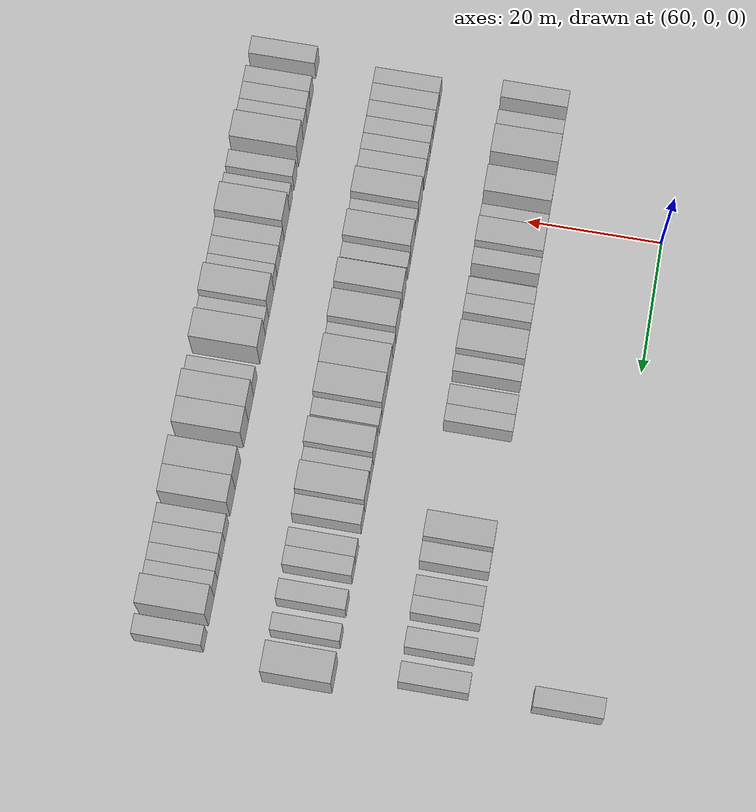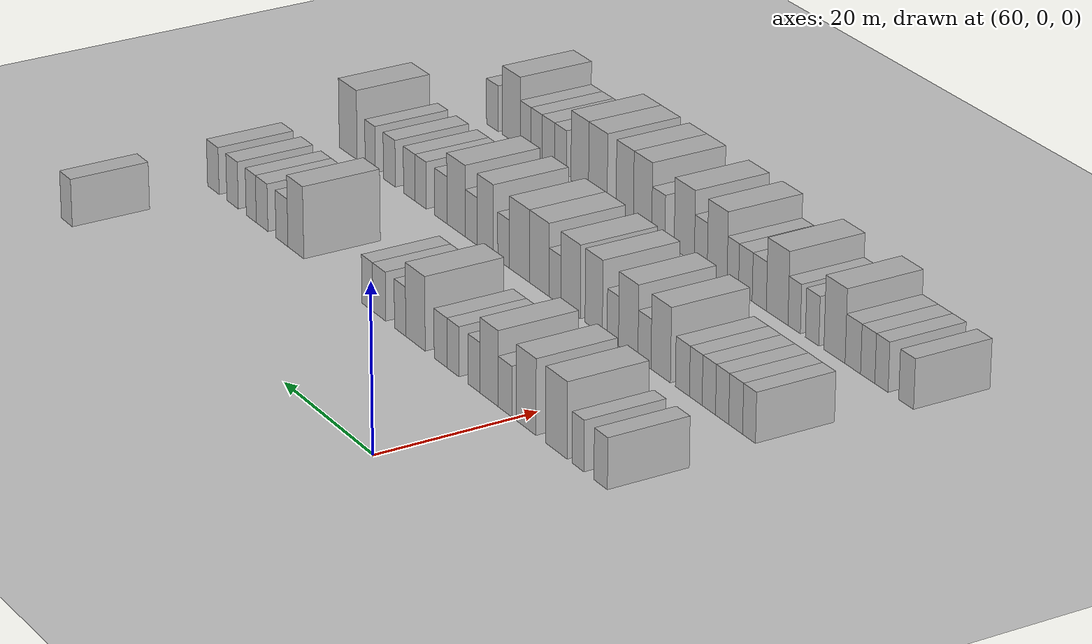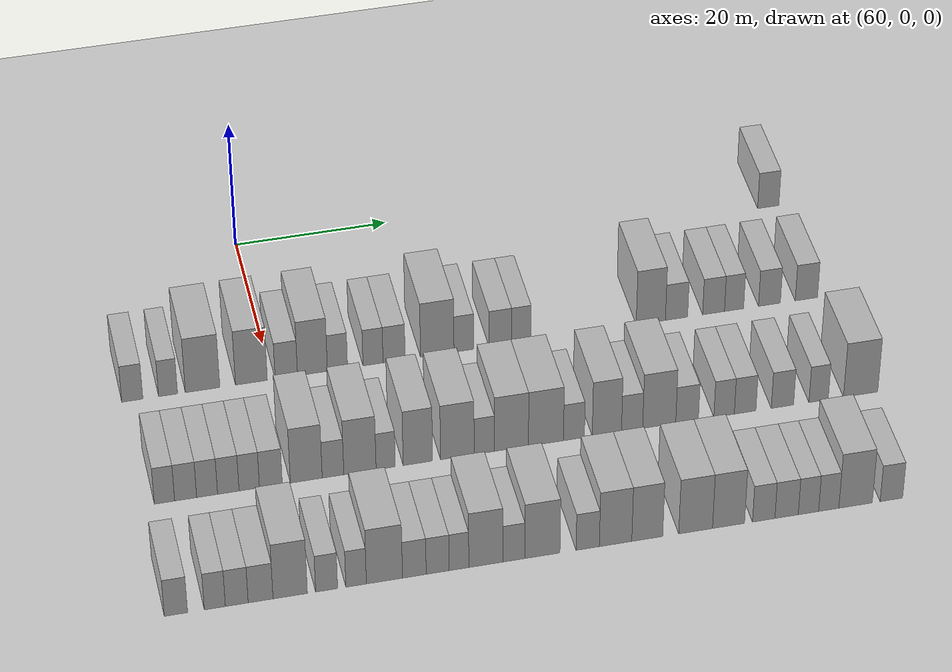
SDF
<sdf version="1.6">
 <world name="default">
  <include>
   <name>ground_plane_2</name>
   <uri>model://HANNAS_ground_plane</uri>
   <pose>100 0 0  0 0 0</pose>
  </include>
  <model name="building_455">
   <static>1</static>
   <pose>63.0000 70.4403 0 0.000000 0.000000 0.000000</pose>
   <link name="link">
    <pose>0 0 3.00 0 0 0</pose>
    <collision name="collision"><geometry><box><size>10.0000 2.9325 6.0000</size></box></geometry></collision>
    <visual name="visual">
     <cast_shadows>0</cast_shadows>
     <geometry><box><size>10.0000 2.9325 6.0000</size></box></geometry>
     <material>
      <script>
       <uri>model://HANNAS_wall/materials/scripts</uri>
       <uri>model://HANNAS_wall/materials/textures</uri>
       <name>vrc/HANNAS_wall</name>
      </script>
     </material>
    </visual>
   </link>
  </model>
  <model name="building_607">
   <static>1</static>
   <pose>82.0000 -17.8307 0 0.000000 0.000000 0.000000</pose>
   <link name="link">
    <pose>0 0 3.00 0 0 0</pose>
    <collision name="collision"><geometry><box><size>10.0000 2.6769 6.0000</size></box></geometry></collision>
    <visual name="visual">
     <cast_shadows>0</cast_shadows>
     <geometry><box><size>10.0000 2.6769 6.0000</size></box></geometry>
     <material>
      <script>
       <uri>model://HANNAS_wall/materials/scripts</uri>
       <uri>model://HANNAS_wall/materials/textures</uri>
       <name>vrc/HANNAS_wall</name>
      </script>
     </material>
    </visual>
   </link>
  </model>
  <model name="building_608">
   <static>1</static>
   <pose>82.0000 -13.2914 0 0.000000 0.000000 0.000000</pose>
   <link name="link">
    <pose>0 0 3.00 0 0 0</pose>
    <collision name="collision"><geometry><box><size>10.0000 2.4017 6.0000</size></box></geometry></collision>
    <visual name="visual">
     <cast_shadows>0</cast_shadows>
     <geometry><box><size>10.0000 2.4017 6.0000</size></box></geometry>
     <material>
      <script>
       <uri>model://HANNAS_wall/materials/scripts</uri>
       <uri>model://HANNAS_wall/materials/textures</uri>
       <name>vrc/HANNAS_wall</name>
      </script>
     </material>
    </visual>
   </link>
  </model>
  <model name="building_609">
   <static>1</static>
   <pose>82.0000 -8.8937 0 0.000000 0.000000 0.000000</pose>
   <link name="link">
    <pose>0 0 4.50 0 0 0</pose>
    <collision name="collision"><geometry><box><size>10.0000 4.3938 9.0000</size></box></geometry></collision>
    <visual name="visual">
     <cast_shadows>0</cast_shadows>
     <geometry><box><size>10.0000 4.3938 9.0000</size></box></geometry>
     <material>
      <script>
       <uri>model://HANNAS_wall/materials/scripts</uri>
       <uri>model://HANNAS_wall/materials/textures</uri>
       <name>vrc/HANNAS_wall</name>
      </script>
     </material>
    </visual>
   </link>
  </model>
  <model name="building_610">
   <static>1</static>
   <pose>82.0000 -2.6568 0 0.000000 0.000000 0.000000</pose>
   <link name="link">
    <pose>0 0 4.50 0 0 0</pose>
    <collision name="collision"><geometry><box><size>10.0000 4.0799 9.0000</size></box></geometry></collision>
    <visual name="visual">
     <cast_shadows>0</cast_shadows>
     <geometry><box><size>10.0000 4.0799 9.0000</size></box></geometry>
     <material>
      <script>
       <uri>model://HANNAS_wall/materials/scripts</uri>
       <uri>model://HANNAS_wall/materials/textures</uri>
       <name>vrc/HANNAS_wall</name>
      </script>
     </material>
    </visual>
   </link>
  </model>
  <model name="building_611">
   <static>1</static>
   <pose>82.0000 1.8225 0 0.000000 0.000000 0.000000</pose>
   <link name="link">
    <pose>0 0 3.00 0 0 0</pose>
    <collision name="collision"><geometry><box><size>10.0000 2.8788 6.0000</size></box></geometry></collision>
    <visual name="visual">
     <cast_shadows>0</cast_shadows>
     <geometry><box><size>10.0000 2.8788 6.0000</size></box></geometry>
     <material>
      <script>
       <uri>model://HANNAS_wall/materials/scripts</uri>
       <uri>model://HANNAS_wall/materials/textures</uri>
       <name>vrc/HANNAS_wall</name>
      </script>
     </material>
    </visual>
   </link>
  </model>
  <model name="building_612">
   <static>1</static>
   <pose>82.0000 5.1880 0 0.000000 0.000000 0.000000</pose>
   <link name="link">
    <pose>0 0 4.50 0 0 0</pose>
    <collision name="collision"><geometry><box><size>10.0000 3.8521 9.0000</size></box></geometry></collision>
    <visual name="visual">
     <cast_shadows>0</cast_shadows>
     <geometry><box><size>10.0000 3.8521 9.0000</size></box></geometry>
     <material>
      <script>
       <uri>model://HANNAS_wall/materials/scripts</uri>
       <uri>model://HANNAS_wall/materials/textures</uri>
       <name>vrc/HANNAS_wall</name>
      </script>
     </material>
    </visual>
   </link>
  </model>
  <model name="building_613">
   <static>1</static>
   <pose>82.0000 8.4117 0 0.000000 0.000000 0.000000</pose>
   <link name="link">
    <pose>0 0 3.00 0 0 0</pose>
    <collision name="collision"><geometry><box><size>10.0000 2.5952 6.0000</size></box></geometry></collision>
    <visual name="visual">
     <cast_shadows>0</cast_shadows>
     <geometry><box><size>10.0000 2.5952 6.0000</size></box></geometry>
     <material>
      <script>
       <uri>model://HANNAS_wall/materials/scripts</uri>
       <uri>model://HANNAS_wall/materials/textures</uri>
       <name>vrc/HANNAS_wall</name>
      </script>
     </material>
    </visual>
   </link>
  </model>
  <model name="building_614">
   <static>1</static>
   <pose>82.0000 13.0053 0 0.000000 0.000000 0.000000</pose>
   <link name="link">
    <pose>0 0 3.00 0 0 0</pose>
    <collision name="collision"><geometry><box><size>10.0000 2.5921 6.0000</size></box></geometry></collision>
    <visual name="visual">
     <cast_shadows>0</cast_shadows>
     <geometry><box><size>10.0000 2.5921 6.0000</size></box></geometry>
     <material>
      <script>
       <uri>model://HANNAS_wall/materials/scripts</uri>
       <uri>model://HANNAS_wall/materials/textures</uri>
       <name>vrc/HANNAS_wall</name>
      </script>
     </material>
    </visual>
   </link>
  </model>
  <model name="building_615">
   <static>1</static>
   <pose>82.0000 15.7340 0 0.000000 0.000000 0.000000</pose>
   <link name="link">
    <pose>0 0 3.00 0 0 0</pose>
    <collision name="collision"><geometry><box><size>10.0000 2.8653 6.0000</size></box></geometry></collision>
    <visual name="visual">
     <cast_shadows>0</cast_shadows>
     <geometry><box><size>10.0000 2.8653 6.0000</size></box></geometry>
     <material>
      <script>
       <uri>model://HANNAS_wall/materials/scripts</uri>
       <uri>model://HANNAS_wall/materials/textures</uri>
       <name>vrc/HANNAS_wall</name>
      </script>
     </material>
    </visual>
   </link>
  </model>
  <model name="building_616">
   <static>1</static>
   <pose>82.0000 21.3483 0 0.000000 0.000000 0.000000</pose>
   <link name="link">
    <pose>0 0 4.50 0 0 0</pose>
    <collision name="collision"><geometry><box><size>10.0000 4.3634 9.0000</size></box></geometry></collision>
    <visual name="visual">
     <cast_shadows>0</cast_shadows>
     <geometry><box><size>10.0000 4.3634 9.0000</size></box></geometry>
     <material>
      <script>
       <uri>model://HANNAS_wall/materials/scripts</uri>
       <uri>model://HANNAS_wall/materials/textures</uri>
       <name>vrc/HANNAS_wall</name>
      </script>
     </material>
    </visual>
   </link>
  </model>
  <model name="building_617">
   <static>1</static>
   <pose>82.0000 24.8137 0 0.000000 0.000000 0.000000</pose>
   <link name="link">
    <pose>0 0 3.00 0 0 0</pose>
    <collision name="collision"><geometry><box><size>10.0000 2.5674 6.0000</size></box></geometry></collision>
    <visual name="visual">
     <cast_shadows>0</cast_shadows>
     <geometry><box><size>10.0000 2.5674 6.0000</size></box></geometry>
     <material>
      <script>
       <uri>model://HANNAS_wall/materials/scripts</uri>
       <uri>model://HANNAS_wall/materials/textures</uri>
       <name>vrc/HANNAS_wall</name>
      </script>
     </material>
    </visual>
   </link>
  </model>
  <model name="building_618">
   <static>1</static>
   <pose>82.0000 29.5744 0 0.000000 0.000000 0.000000</pose>
   <link name="link">
    <pose>0 0 3.00 0 0 0</pose>
    <collision name="collision"><geometry><box><size>10.0000 2.9540 6.0000</size></box></geometry></collision>
    <visual name="visual">
     <cast_shadows>0</cast_shadows>
     <geometry><box><size>10.0000 2.9540 6.0000</size></box></geometry>
     <material>
      <script>
       <uri>model://HANNAS_wall/materials/scripts</uri>
       <uri>model://HANNAS_wall/materials/textures</uri>
       <name>vrc/HANNAS_wall</name>
      </script>
     </material>
    </visual>
   </link>
  </model>
  <model name="building_619">
   <static>1</static>
   <pose>82.0000 32.3255 0 0.000000 0.000000 0.000000</pose>
   <link name="link">
    <pose>0 0 3.00 0 0 0</pose>
    <collision name="collision"><geometry><box><size>10.0000 2.5483 6.0000</size></box></geometry></collision>
    <visual name="visual">
     <cast_shadows>0</cast_shadows>
     <geometry><box><size>10.0000 2.5483 6.0000</size></box></geometry>
     <material>
      <script>
       <uri>model://HANNAS_wall/materials/scripts</uri>
       <uri>model://HANNAS_wall/materials/textures</uri>
       <name>vrc/HANNAS_wall</name>
      </script>
     </material>
    </visual>
   </link>
  </model>
  <model name="building_620">
   <static>1</static>
   <pose>82.0000 49.4125 0 0.000000 0.000000 0.000000</pose>
   <link name="link">
    <pose>0 0 4.50 0 0 0</pose>
    <collision name="collision"><geometry><box><size>10.0000 3.8753 9.0000</size></box></geometry></collision>
    <visual name="visual">
     <cast_shadows>0</cast_shadows>
     <geometry><box><size>10.0000 3.8753 9.0000</size></box></geometry>
     <material>
      <script>
       <uri>model://HANNAS_wall/materials/scripts</uri>
       <uri>model://HANNAS_wall/materials/textures</uri>
       <name>vrc/HANNAS_wall</name>
      </script>
     </material>
    </visual>
   </link>
  </model>
  <model name="building_621">
   <static>1</static>
   <pose>82.0000 52.8271 0 0.000000 0.000000 0.000000</pose>
   <link name="link">
    <pose>0 0 3.00 0 0 0</pose>
    <collision name="collision"><geometry><box><size>10.0000 2.9538 6.0000</size></box></geometry></collision>
    <visual name="visual">
     <cast_shadows>0</cast_shadows>
     <geometry><box><size>10.0000 2.9538 6.0000</size></box></geometry>
     <material>
      <script>
       <uri>model://HANNAS_wall/materials/scripts</uri>
       <uri>model://HANNAS_wall/materials/textures</uri>
       <name>vrc/HANNAS_wall</name>
      </script>
     </material>
    </visual>
   </link>
  </model>
  <model name="building_622">
   <static>1</static>
   <pose>82.0000 57.7645 0 0.000000 0.000000 0.000000</pose>
   <link name="link">
    <pose>0 0 3.00 0 0 0</pose>
    <collision name="collision"><geometry><box><size>10.0000 2.9211 6.0000</size></box></geometry></collision>
    <visual name="visual">
     <cast_shadows>0</cast_shadows>
     <geometry><box><size>10.0000 2.9211 6.0000</size></box></geometry>
     <material>
      <script>
       <uri>model://HANNAS_wall/materials/scripts</uri>
       <uri>model://HANNAS_wall/materials/textures</uri>
       <name>vrc/HANNAS_wall</name>
      </script>
     </material>
    </visual>
   </link>
  </model>
  <model name="building_623">
   <static>1</static>
   <pose>82.0000 60.5018 0 0.000000 0.000000 0.000000</pose>
   <link name="link">
    <pose>0 0 3.00 0 0 0</pose>
    <collision name="collision"><geometry><box><size>10.0000 2.5534 6.0000</size></box></geometry></collision>
    <visual name="visual">
     <cast_shadows>0</cast_shadows>
     <geometry><box><size>10.0000 2.5534 6.0000</size></box></geometry>
     <material>
      <script>
       <uri>model://HANNAS_wall/materials/scripts</uri>
       <uri>model://HANNAS_wall/materials/textures</uri>
       <name>vrc/HANNAS_wall</name>
      </script>
     </material>
    </visual>
   </link>
  </model>
  <model name="building_624">
   <static>1</static>
   <pose>82.0000 65.2423 0 0.000000 0.000000 0.000000</pose>
   <link name="link">
    <pose>0 0 3.00 0 0 0</pose>
    <collision name="collision"><geometry><box><size>10.0000 2.9277 6.0000</size></box></geometry></collision>
    <visual name="visual">
     <cast_shadows>0</cast_shadows>
     <geometry><box><size>10.0000 2.9277 6.0000</size></box></geometry>
     <material>
      <script>
       <uri>model://HANNAS_wall/materials/scripts</uri>
       <uri>model://HANNAS_wall/materials/textures</uri>
       <name>vrc/HANNAS_wall</name>
      </script>
     </material>
    </visual>
   </link>
  </model>
  <model name="building_625">
   <static>1</static>
   <pose>82.0000 70.2028 0 0.000000 0.000000 0.000000</pose>
   <link name="link">
    <pose>0 0 3.00 0 0 0</pose>
    <collision name="collision"><geometry><box><size>10.0000 2.9934 6.0000</size></box></geometry></collision>
    <visual name="visual">
     <cast_shadows>0</cast_shadows>
     <geometry><box><size>10.0000 2.9934 6.0000</size></box></geometry>
     <material>
      <script>
       <uri>model://HANNAS_wall/materials/scripts</uri>
       <uri>model://HANNAS_wall/materials/textures</uri>
       <name>vrc/HANNAS_wall</name>
      </script>
     </material>
    </visual>
   </link>
  </model>
  <model name="building_782">
   <static>1</static>
   <pose>101.0000 -16.7175 0 0.000000 0.000000 0.000000</pose>
   <link name="link">
    <pose>0 0 3.00 0 0 0</pose>
    <collision name="collision"><geometry><box><size>10.0000 2.5063 6.0000</size></box></geometry></collision>
    <visual name="visual">
     <cast_shadows>0</cast_shadows>
     <geometry><box><size>10.0000 2.5063 6.0000</size></box></geometry>
     <material>
      <script>
       <uri>model://HANNAS_wall/materials/scripts</uri>
       <uri>model://HANNAS_wall/materials/textures</uri>
       <name>vrc/HANNAS_wall</name>
      </script>
     </material>
    </visual>
   </link>
  </model>
  <model name="building_783">
   <static>1</static>
   <pose>101.0000 -14.1062 0 0.000000 0.000000 0.000000</pose>
   <link name="link">
    <pose>0 0 3.00 0 0 0</pose>
    <collision name="collision"><geometry><box><size>10.0000 2.7163 6.0000</size></box></geometry></collision>
    <visual name="visual">
     <cast_shadows>0</cast_shadows>
     <geometry><box><size>10.0000 2.7163 6.0000</size></box></geometry>
     <material>
      <script>
       <uri>model://HANNAS_wall/materials/scripts</uri>
       <uri>model://HANNAS_wall/materials/textures</uri>
       <name>vrc/HANNAS_wall</name>
      </script>
     </material>
    </visual>
   </link>
  </model>
  <model name="building_784">
   <static>1</static>
   <pose>101.0000 -11.4541 0 0.000000 0.000000 0.000000</pose>
   <link name="link">
    <pose>0 0 3.00 0 0 0</pose>
    <collision name="collision"><geometry><box><size>10.0000 2.5879 6.0000</size></box></geometry></collision>
    <visual name="visual">
     <cast_shadows>0</cast_shadows>
     <geometry><box><size>10.0000 2.5879 6.0000</size></box></geometry>
     <material>
      <script>
       <uri>model://HANNAS_wall/materials/scripts</uri>
       <uri>model://HANNAS_wall/materials/textures</uri>
       <name>vrc/HANNAS_wall</name>
      </script>
     </material>
    </visual>
   </link>
  </model>
  <model name="building_785">
   <static>1</static>
   <pose>101.0000 -8.8289 0 0.000000 0.000000 0.000000</pose>
   <link name="link">
    <pose>0 0 3.00 0 0 0</pose>
    <collision name="collision"><geometry><box><size>10.0000 2.6625 6.0000</size></box></geometry></collision>
    <visual name="visual">
     <cast_shadows>0</cast_shadows>
     <geometry><box><size>10.0000 2.6625 6.0000</size></box></geometry>
     <material>
      <script>
       <uri>model://HANNAS_wall/materials/scripts</uri>
       <uri>model://HANNAS_wall/materials/textures</uri>
       <name>vrc/HANNAS_wall</name>
      </script>
     </material>
    </visual>
   </link>
  </model>
  <model name="building_786">
   <static>1</static>
   <pose>101.0000 -6.2318 0 0.000000 0.000000 0.000000</pose>
   <link name="link">
    <pose>0 0 3.00 0 0 0</pose>
    <collision name="collision"><geometry><box><size>10.0000 2.5317 6.0000</size></box></geometry></collision>
    <visual name="visual">
     <cast_shadows>0</cast_shadows>
     <geometry><box><size>10.0000 2.5317 6.0000</size></box></geometry>
     <material>
      <script>
       <uri>model://HANNAS_wall/materials/scripts</uri>
       <uri>model://HANNAS_wall/materials/textures</uri>
       <name>vrc/HANNAS_wall</name>
      </script>
     </material>
    </visual>
   </link>
  </model>
  <model name="building_787">
   <static>1</static>
   <pose>101.0000 -3.5435 0 0.000000 0.000000 0.000000</pose>
   <link name="link">
    <pose>0 0 3.00 0 0 0</pose>
    <collision name="collision"><geometry><box><size>10.0000 2.8449 6.0000</size></box></geometry></collision>
    <visual name="visual">
     <cast_shadows>0</cast_shadows>
     <geometry><box><size>10.0000 2.8449 6.0000</size></box></geometry>
     <material>
      <script>
       <uri>model://HANNAS_wall/materials/scripts</uri>
       <uri>model://HANNAS_wall/materials/textures</uri>
       <name>vrc/HANNAS_wall</name>
      </script>
     </material>
    </visual>
   </link>
  </model>
  <model name="building_788">
   <static>1</static>
   <pose>101.0000 0.8694 0 0.000000 0.000000 0.000000</pose>
   <link name="link">
    <pose>0 0 4.50 0 0 0</pose>
    <collision name="collision"><geometry><box><size>10.0000 3.9810 9.0000</size></box></geometry></collision>
    <visual name="visual">
     <cast_shadows>0</cast_shadows>
     <geometry><box><size>10.0000 3.9810 9.0000</size></box></geometry>
     <material>
      <script>
       <uri>model://HANNAS_wall/materials/scripts</uri>
       <uri>model://HANNAS_wall/materials/textures</uri>
       <name>vrc/HANNAS_wall</name>
      </script>
     </material>
    </visual>
   </link>
  </model>
  <model name="building_789">
   <static>1</static>
   <pose>101.0000 4.2115 0 0.000000 0.000000 0.000000</pose>
   <link name="link">
    <pose>0 0 3.00 0 0 0</pose>
    <collision name="collision"><geometry><box><size>10.0000 2.7032 6.0000</size></box></geometry></collision>
    <visual name="visual">
     <cast_shadows>0</cast_shadows>
     <geometry><box><size>10.0000 2.7032 6.0000</size></box></geometry>
     <material>
      <script>
       <uri>model://HANNAS_wall/materials/scripts</uri>
       <uri>model://HANNAS_wall/materials/textures</uri>
       <name>vrc/HANNAS_wall</name>
      </script>
     </material>
    </visual>
   </link>
  </model>
  <model name="building_790">
   <static>1</static>
   <pose>101.0000 7.5888 0 0.000000 0.000000 0.000000</pose>
   <link name="link">
    <pose>0 0 4.50 0 0 0</pose>
    <collision name="collision"><geometry><box><size>10.0000 4.0513 9.0000</size></box></geometry></collision>
    <visual name="visual">
     <cast_shadows>0</cast_shadows>
     <geometry><box><size>10.0000 4.0513 9.0000</size></box></geometry>
     <material>
      <script>
       <uri>model://HANNAS_wall/materials/scripts</uri>
       <uri>model://HANNAS_wall/materials/textures</uri>
       <name>vrc/HANNAS_wall</name>
      </script>
     </material>
    </visual>
   </link>
  </model>
  <model name="building_791">
   <static>1</static>
   <pose>101.0000 10.8164 0 0.000000 0.000000 0.000000</pose>
   <link name="link">
    <pose>0 0 3.00 0 0 0</pose>
    <collision name="collision"><geometry><box><size>10.0000 2.4039 6.0000</size></box></geometry></collision>
    <visual name="visual">
     <cast_shadows>0</cast_shadows>
     <geometry><box><size>10.0000 2.4039 6.0000</size></box></geometry>
     <material>
      <script>
       <uri>model://HANNAS_wall/materials/scripts</uri>
       <uri>model://HANNAS_wall/materials/textures</uri>
       <name>vrc/HANNAS_wall</name>
      </script>
     </material>
    </visual>
   </link>
  </model>
  <model name="building_792">
   <static>1</static>
   <pose>101.0000 14.8717 0 0.000000 0.000000 0.000000</pose>
   <link name="link">
    <pose>0 0 4.50 0 0 0</pose>
    <collision name="collision"><geometry><box><size>10.0000 3.7068 9.0000</size></box></geometry></collision>
    <visual name="visual">
     <cast_shadows>0</cast_shadows>
     <geometry><box><size>10.0000 3.7068 9.0000</size></box></geometry>
     <material>
      <script>
       <uri>model://HANNAS_wall/materials/scripts</uri>
       <uri>model://HANNAS_wall/materials/textures</uri>
       <name>vrc/HANNAS_wall</name>
      </script>
     </material>
    </visual>
   </link>
  </model>
  <model name="building_793">
   <static>1</static>
   <pose>101.0000 19.8513 0 0.000000 0.000000 0.000000</pose>
   <link name="link">
    <pose>0 0 4.50 0 0 0</pose>
    <collision name="collision"><geometry><box><size>10.0000 4.2522 9.0000</size></box></geometry></collision>
    <visual name="visual">
     <cast_shadows>0</cast_shadows>
     <geometry><box><size>10.0000 4.2522 9.0000</size></box></geometry>
     <material>
      <script>
       <uri>model://HANNAS_wall/materials/scripts</uri>
       <uri>model://HANNAS_wall/materials/textures</uri>
       <name>vrc/HANNAS_wall</name>
      </script>
     </material>
    </visual>
   </link>
  </model>
  <model name="building_794">
   <static>1</static>
   <pose>101.0000 23.2660 0 0.000000 0.000000 0.000000</pose>
   <link name="link">
    <pose>0 0 3.00 0 0 0</pose>
    <collision name="collision"><geometry><box><size>10.0000 2.5773 6.0000</size></box></geometry></collision>
    <visual name="visual">
     <cast_shadows>0</cast_shadows>
     <geometry><box><size>10.0000 2.5773 6.0000</size></box></geometry>
     <material>
      <script>
       <uri>model://HANNAS_wall/materials/scripts</uri>
       <uri>model://HANNAS_wall/materials/textures</uri>
       <name>vrc/HANNAS_wall</name>
      </script>
     </material>
    </visual>
   </link>
  </model>
  <model name="building_795">
   <static>1</static>
   <pose>101.0000 26.7130 0 0.000000 0.000000 0.000000</pose>
   <link name="link">
    <pose>0 0 4.50 0 0 0</pose>
    <collision name="collision"><geometry><box><size>10.0000 4.3166 9.0000</size></box></geometry></collision>
    <visual name="visual">
     <cast_shadows>0</cast_shadows>
     <geometry><box><size>10.0000 4.3166 9.0000</size></box></geometry>
     <material>
      <script>
       <uri>model://HANNAS_wall/materials/scripts</uri>
       <uri>model://HANNAS_wall/materials/textures</uri>
       <name>vrc/HANNAS_wall</name>
      </script>
     </material>
    </visual>
   </link>
  </model>
  <model name="building_796">
   <static>1</static>
   <pose>101.0000 31.1042 0 0.000000 0.000000 0.000000</pose>
   <link name="link">
    <pose>0 0 4.50 0 0 0</pose>
    <collision name="collision"><geometry><box><size>10.0000 4.4658 9.0000</size></box></geometry></collision>
    <visual name="visual">
     <cast_shadows>0</cast_shadows>
     <geometry><box><size>10.0000 4.4658 9.0000</size></box></geometry>
     <material>
      <script>
       <uri>model://HANNAS_wall/materials/scripts</uri>
       <uri>model://HANNAS_wall/materials/textures</uri>
       <name>vrc/HANNAS_wall</name>
      </script>
     </material>
    </visual>
   </link>
  </model>
  <model name="building_797">
   <static>1</static>
   <pose>101.0000 34.6735 0 0.000000 0.000000 0.000000</pose>
   <link name="link">
    <pose>0 0 3.00 0 0 0</pose>
    <collision name="collision"><geometry><box><size>10.0000 2.6730 6.0000</size></box></geometry></collision>
    <visual name="visual">
     <cast_shadows>0</cast_shadows>
     <geometry><box><size>10.0000 2.6730 6.0000</size></box></geometry>
     <material>
      <script>
       <uri>model://HANNAS_wall/materials/scripts</uri>
       <uri>model://HANNAS_wall/materials/textures</uri>
       <name>vrc/HANNAS_wall</name>
      </script>
     </material>
    </visual>
   </link>
  </model>
  <model name="building_798">
   <static>1</static>
   <pose>101.0000 38.8861 0 0.000000 0.000000 0.000000</pose>
   <link name="link">
    <pose>0 0 4.50 0 0 0</pose>
    <collision name="collision"><geometry><box><size>10.0000 3.7521 9.0000</size></box></geometry></collision>
    <visual name="visual">
     <cast_shadows>0</cast_shadows>
     <geometry><box><size>10.0000 3.7521 9.0000</size></box></geometry>
     <material>
      <script>
       <uri>model://HANNAS_wall/materials/scripts</uri>
       <uri>model://HANNAS_wall/materials/textures</uri>
       <name>vrc/HANNAS_wall</name>
      </script>
     </material>
    </visual>
   </link>
  </model>
  <model name="building_799">
   <static>1</static>
   <pose>101.0000 42.1196 0 0.000000 0.000000 0.000000</pose>
   <link name="link">
    <pose>0 0 3.00 0 0 0</pose>
    <collision name="collision"><geometry><box><size>10.0000 2.7151 6.0000</size></box></geometry></collision>
    <visual name="visual">
     <cast_shadows>0</cast_shadows>
     <geometry><box><size>10.0000 2.7151 6.0000</size></box></geometry>
     <material>
      <script>
       <uri>model://HANNAS_wall/materials/scripts</uri>
       <uri>model://HANNAS_wall/materials/textures</uri>
       <name>vrc/HANNAS_wall</name>
      </script>
     </material>
    </visual>
   </link>
  </model>
  <model name="building_800">
   <static>1</static>
   <pose>101.0000 45.6086 0 0.000000 0.000000 0.000000</pose>
   <link name="link">
    <pose>0 0 4.50 0 0 0</pose>
    <collision name="collision"><geometry><box><size>10.0000 4.2629 9.0000</size></box></geometry></collision>
    <visual name="visual">
     <cast_shadows>0</cast_shadows>
     <geometry><box><size>10.0000 4.2629 9.0000</size></box></geometry>
     <material>
      <script>
       <uri>model://HANNAS_wall/materials/scripts</uri>
       <uri>model://HANNAS_wall/materials/textures</uri>
       <name>vrc/HANNAS_wall</name>
      </script>
     </material>
    </visual>
   </link>
  </model>
  <model name="building_801">
   <static>1</static>
   <pose>101.0000 49.2036 0 0.000000 0.000000 0.000000</pose>
   <link name="link">
    <pose>0 0 3.00 0 0 0</pose>
    <collision name="collision"><geometry><box><size>10.0000 2.9271 6.0000</size></box></geometry></collision>
    <visual name="visual">
     <cast_shadows>0</cast_shadows>
     <geometry><box><size>10.0000 2.9271 6.0000</size></box></geometry>
     <material>
      <script>
       <uri>model://HANNAS_wall/materials/scripts</uri>
       <uri>model://HANNAS_wall/materials/textures</uri>
       <name>vrc/HANNAS_wall</name>
      </script>
     </material>
    </visual>
   </link>
  </model>
  <model name="building_802">
   <static>1</static>
   <pose>101.0000 53.9950 0 0.000000 0.000000 0.000000</pose>
   <link name="link">
    <pose>0 0 3.00 0 0 0</pose>
    <collision name="collision"><geometry><box><size>10.0000 2.6556 6.0000</size></box></geometry></collision>
    <visual name="visual">
     <cast_shadows>0</cast_shadows>
     <geometry><box><size>10.0000 2.6556 6.0000</size></box></geometry>
     <material>
      <script>
       <uri>model://HANNAS_wall/materials/scripts</uri>
       <uri>model://HANNAS_wall/materials/textures</uri>
       <name>vrc/HANNAS_wall</name>
      </script>
     </material>
    </visual>
   </link>
  </model>
  <model name="building_803">
   <static>1</static>
   <pose>101.0000 56.7201 0 0.000000 0.000000 0.000000</pose>
   <link name="link">
    <pose>0 0 3.00 0 0 0</pose>
    <collision name="collision"><geometry><box><size>10.0000 2.7945 6.0000</size></box></geometry></collision>
    <visual name="visual">
     <cast_shadows>0</cast_shadows>
     <geometry><box><size>10.0000 2.7945 6.0000</size></box></geometry>
     <material>
      <script>
       <uri>model://HANNAS_wall/materials/scripts</uri>
       <uri>model://HANNAS_wall/materials/textures</uri>
       <name>vrc/HANNAS_wall</name>
      </script>
     </material>
    </visual>
   </link>
  </model>
  <model name="building_804">
   <static>1</static>
   <pose>101.0000 61.5712 0 0.000000 0.000000 0.000000</pose>
   <link name="link">
    <pose>0 0 3.00 0 0 0</pose>
    <collision name="collision"><geometry><box><size>10.0000 2.9077 6.0000</size></box></geometry></collision>
    <visual name="visual">
     <cast_shadows>0</cast_shadows>
     <geometry><box><size>10.0000 2.9077 6.0000</size></box></geometry>
     <material>
      <script>
       <uri>model://HANNAS_wall/materials/scripts</uri>
       <uri>model://HANNAS_wall/materials/textures</uri>
       <name>vrc/HANNAS_wall</name>
      </script>
     </material>
    </visual>
   </link>
  </model>
  <model name="building_805">
   <static>1</static>
   <pose>101.0000 66.2852 0 0.000000 0.000000 0.000000</pose>
   <link name="link">
    <pose>0 0 3.00 0 0 0</pose>
    <collision name="collision"><geometry><box><size>10.0000 2.5204 6.0000</size></box></geometry></collision>
    <visual name="visual">
     <cast_shadows>0</cast_shadows>
     <geometry><box><size>10.0000 2.5204 6.0000</size></box></geometry>
     <material>
      <script>
       <uri>model://HANNAS_wall/materials/scripts</uri>
       <uri>model://HANNAS_wall/materials/textures</uri>
       <name>vrc/HANNAS_wall</name>
      </script>
     </material>
    </visual>
   </link>
  </model>
  <model name="building_806">
   <static>1</static>
   <pose>101.0000 71.7885 0 0.000000 0.000000 0.000000</pose>
   <link name="link">
    <pose>0 0 4.50 0 0 0</pose>
    <collision name="collision"><geometry><box><size>10.0000 4.4860 9.0000</size></box></geometry></collision>
    <visual name="visual">
     <cast_shadows>0</cast_shadows>
     <geometry><box><size>10.0000 4.4860 9.0000</size></box></geometry>
     <material>
      <script>
       <uri>model://HANNAS_wall/materials/scripts</uri>
       <uri>model://HANNAS_wall/materials/textures</uri>
       <name>vrc/HANNAS_wall</name>
      </script>
     </material>
    </visual>
   </link>
  </model>
  <model name="building_964">
   <static>1</static>
   <pose>120.0000 -18.3193 0 0.000000 0.000000 0.000000</pose>
   <link name="link">
    <pose>0 0 3.00 0 0 0</pose>
    <collision name="collision"><geometry><box><size>10.0000 2.7880 6.0000</size></box></geometry></collision>
    <visual name="visual">
     <cast_shadows>0</cast_shadows>
     <geometry><box><size>10.0000 2.7880 6.0000</size></box></geometry>
     <material>
      <script>
       <uri>model://HANNAS_wall/materials/scripts</uri>
       <uri>model://HANNAS_wall/materials/textures</uri>
       <name>vrc/HANNAS_wall</name>
      </script>
     </material>
    </visual>
   </link>
  </model>
  <model name="building_965">
   <static>1</static>
   <pose>120.0000 -13.6605 0 0.000000 0.000000 0.000000</pose>
   <link name="link">
    <pose>0 0 3.00 0 0 0</pose>
    <collision name="collision"><geometry><box><size>10.0000 2.5295 6.0000</size></box></geometry></collision>
    <visual name="visual">
     <cast_shadows>0</cast_shadows>
     <geometry><box><size>10.0000 2.5295 6.0000</size></box></geometry>
     <material>
      <script>
       <uri>model://HANNAS_wall/materials/scripts</uri>
       <uri>model://HANNAS_wall/materials/textures</uri>
       <name>vrc/HANNAS_wall</name>
      </script>
     </material>
    </visual>
   </link>
  </model>
  <model name="building_966">
   <static>1</static>
   <pose>120.0000 -11.0278 0 0.000000 0.000000 0.000000</pose>
   <link name="link">
    <pose>0 0 3.00 0 0 0</pose>
    <collision name="collision"><geometry><box><size>10.0000 2.7359 6.0000</size></box></geometry></collision>
    <visual name="visual">
     <cast_shadows>0</cast_shadows>
     <geometry><box><size>10.0000 2.7359 6.0000</size></box></geometry>
     <material>
      <script>
       <uri>model://HANNAS_wall/materials/scripts</uri>
       <uri>model://HANNAS_wall/materials/textures</uri>
       <name>vrc/HANNAS_wall</name>
      </script>
     </material>
    </visual>
   </link>
  </model>
  <model name="building_967">
   <static>1</static>
   <pose>120.0000 -8.1617 0 0.000000 0.000000 0.000000</pose>
   <link name="link">
    <pose>0 0 3.00 0 0 0</pose>
    <collision name="collision"><geometry><box><size>10.0000 2.9962 6.0000</size></box></geometry></collision>
    <visual name="visual">
     <cast_shadows>0</cast_shadows>
     <geometry><box><size>10.0000 2.9962 6.0000</size></box></geometry>
     <material>
      <script>
       <uri>model://HANNAS_wall/materials/scripts</uri>
       <uri>model://HANNAS_wall/materials/textures</uri>
       <name>vrc/HANNAS_wall</name>
      </script>
     </material>
    </visual>
   </link>
  </model>
  <model name="building_968">
   <static>1</static>
   <pose>120.0000 -4.5910 0 0.000000 0.000000 0.000000</pose>
   <link name="link">
    <pose>0 0 4.50 0 0 0</pose>
    <collision name="collision"><geometry><box><size>10.0000 4.1452 9.0000</size></box></geometry></collision>
    <visual name="visual">
     <cast_shadows>0</cast_shadows>
     <geometry><box><size>10.0000 4.1452 9.0000</size></box></geometry>
     <material>
      <script>
       <uri>model://HANNAS_wall/materials/scripts</uri>
       <uri>model://HANNAS_wall/materials/textures</uri>
       <name>vrc/HANNAS_wall</name>
      </script>
     </material>
    </visual>
   </link>
  </model>
  <model name="building_969">
   <static>1</static>
   <pose>120.0000 -0.1866 0 0.000000 0.000000 0.000000</pose>
   <link name="link">
    <pose>0 0 3.00 0 0 0</pose>
    <collision name="collision"><geometry><box><size>10.0000 2.6638 6.0000</size></box></geometry></collision>
    <visual name="visual">
     <cast_shadows>0</cast_shadows>
     <geometry><box><size>10.0000 2.6638 6.0000</size></box></geometry>
     <material>
      <script>
       <uri>model://HANNAS_wall/materials/scripts</uri>
       <uri>model://HANNAS_wall/materials/textures</uri>
       <name>vrc/HANNAS_wall</name>
      </script>
     </material>
    </visual>
   </link>
  </model>
  <model name="building_970">
   <static>1</static>
   <pose>120.0000 3.3925 0 0.000000 0.000000 0.000000</pose>
   <link name="link">
    <pose>0 0 3.00 0 0 0</pose>
    <collision name="collision"><geometry><box><size>10.0000 2.4945 6.0000</size></box></geometry></collision>
    <visual name="visual">
     <cast_shadows>0</cast_shadows>
     <geometry><box><size>10.0000 2.4945 6.0000</size></box></geometry>
     <material>
      <script>
       <uri>model://HANNAS_wall/materials/scripts</uri>
       <uri>model://HANNAS_wall/materials/textures</uri>
       <name>vrc/HANNAS_wall</name>
      </script>
     </material>
    </visual>
   </link>
  </model>
  <model name="building_971">
   <static>1</static>
   <pose>120.0000 6.8370 0 0.000000 0.000000 0.000000</pose>
   <link name="link">
    <pose>0 0 4.50 0 0 0</pose>
    <collision name="collision"><geometry><box><size>10.0000 4.3945 9.0000</size></box></geometry></collision>
    <visual name="visual">
     <cast_shadows>0</cast_shadows>
     <geometry><box><size>10.0000 4.3945 9.0000</size></box></geometry>
     <material>
      <script>
       <uri>model://HANNAS_wall/materials/scripts</uri>
       <uri>model://HANNAS_wall/materials/textures</uri>
       <name>vrc/HANNAS_wall</name>
      </script>
     </material>
    </visual>
   </link>
  </model>
  <model name="building_972">
   <static>1</static>
   <pose>120.0000 10.4801 0 0.000000 0.000000 0.000000</pose>
   <link name="link">
    <pose>0 0 3.00 0 0 0</pose>
    <collision name="collision"><geometry><box><size>10.0000 2.8917 6.0000</size></box></geometry></collision>
    <visual name="visual">
     <cast_shadows>0</cast_shadows>
     <geometry><box><size>10.0000 2.8917 6.0000</size></box></geometry>
     <material>
      <script>
       <uri>model://HANNAS_wall/materials/scripts</uri>
       <uri>model://HANNAS_wall/materials/textures</uri>
       <name>vrc/HANNAS_wall</name>
      </script>
     </material>
    </visual>
   </link>
  </model>
  <model name="building_973">
   <static>1</static>
   <pose>120.0000 13.3325 0 0.000000 0.000000 0.000000</pose>
   <link name="link">
    <pose>0 0 3.00 0 0 0</pose>
    <collision name="collision"><geometry><box><size>10.0000 2.8133 6.0000</size></box></geometry></collision>
    <visual name="visual">
     <cast_shadows>0</cast_shadows>
     <geometry><box><size>10.0000 2.8133 6.0000</size></box></geometry>
     <material>
      <script>
       <uri>model://HANNAS_wall/materials/scripts</uri>
       <uri>model://HANNAS_wall/materials/textures</uri>
       <name>vrc/HANNAS_wall</name>
      </script>
     </material>
    </visual>
   </link>
  </model>
  <model name="building_974">
   <static>1</static>
   <pose>120.0000 15.9397 0 0.000000 0.000000 0.000000</pose>
   <link name="link">
    <pose>0 0 3.00 0 0 0</pose>
    <collision name="collision"><geometry><box><size>10.0000 2.4010 6.0000</size></box></geometry></collision>
    <visual name="visual">
     <cast_shadows>0</cast_shadows>
     <geometry><box><size>10.0000 2.4010 6.0000</size></box></geometry>
     <material>
      <script>
       <uri>model://HANNAS_wall/materials/scripts</uri>
       <uri>model://HANNAS_wall/materials/textures</uri>
       <name>vrc/HANNAS_wall</name>
      </script>
     </material>
    </visual>
   </link>
  </model>
  <model name="building_975">
   <static>1</static>
   <pose>120.0000 19.2205 0 0.000000 0.000000 0.000000</pose>
   <link name="link">
    <pose>0 0 4.50 0 0 0</pose>
    <collision name="collision"><geometry><box><size>10.0000 4.1607 9.0000</size></box></geometry></collision>
    <visual name="visual">
     <cast_shadows>0</cast_shadows>
     <geometry><box><size>10.0000 4.1607 9.0000</size></box></geometry>
     <material>
      <script>
       <uri>model://HANNAS_wall/materials/scripts</uri>
       <uri>model://HANNAS_wall/materials/textures</uri>
       <name>vrc/HANNAS_wall</name>
      </script>
     </material>
    </visual>
   </link>
  </model>
  <model name="building_976">
   <static>1</static>
   <pose>120.0000 22.6682 0 0.000000 0.000000 0.000000</pose>
   <link name="link">
    <pose>0 0 3.00 0 0 0</pose>
    <collision name="collision"><geometry><box><size>10.0000 2.7346 6.0000</size></box></geometry></collision>
    <visual name="visual">
     <cast_shadows>0</cast_shadows>
     <geometry><box><size>10.0000 2.7346 6.0000</size></box></geometry>
     <material>
      <script>
       <uri>model://HANNAS_wall/materials/scripts</uri>
       <uri>model://HANNAS_wall/materials/textures</uri>
       <name>vrc/HANNAS_wall</name>
      </script>
     </material>
    </visual>
   </link>
  </model>
  <model name="building_977">
   <static>1</static>
   <pose>120.0000 26.1998 0 0.000000 0.000000 0.000000</pose>
   <link name="link">
    <pose>0 0 4.50 0 0 0</pose>
    <collision name="collision"><geometry><box><size>10.0000 4.3286 9.0000</size></box></geometry></collision>
    <visual name="visual">
     <cast_shadows>0</cast_shadows>
     <geometry><box><size>10.0000 4.3286 9.0000</size></box></geometry>
     <material>
      <script>
       <uri>model://HANNAS_wall/materials/scripts</uri>
       <uri>model://HANNAS_wall/materials/textures</uri>
       <name>vrc/HANNAS_wall</name>
      </script>
     </material>
    </visual>
   </link>
  </model>
  <model name="building_978">
   <static>1</static>
   <pose>120.0000 31.8040 0 0.000000 0.000000 0.000000</pose>
   <link name="link">
    <pose>0 0 3.00 0 0 0</pose>
    <collision name="collision"><geometry><box><size>10.0000 2.8799 6.0000</size></box></geometry></collision>
    <visual name="visual">
     <cast_shadows>0</cast_shadows>
     <geometry><box><size>10.0000 2.8799 6.0000</size></box></geometry>
     <material>
      <script>
       <uri>model://HANNAS_wall/materials/scripts</uri>
       <uri>model://HANNAS_wall/materials/textures</uri>
       <name>vrc/HANNAS_wall</name>
      </script>
     </material>
    </visual>
   </link>
  </model>
  <model name="building_979">
   <static>1</static>
   <pose>120.0000 35.2597 0 0.000000 0.000000 0.000000</pose>
   <link name="link">
    <pose>0 0 4.50 0 0 0</pose>
    <collision name="collision"><geometry><box><size>10.0000 4.0314 9.0000</size></box></geometry></collision>
    <visual name="visual">
     <cast_shadows>0</cast_shadows>
     <geometry><box><size>10.0000 4.0314 9.0000</size></box></geometry>
     <material>
      <script>
       <uri>model://HANNAS_wall/materials/scripts</uri>
       <uri>model://HANNAS_wall/materials/textures</uri>
       <name>vrc/HANNAS_wall</name>
      </script>
     </material>
    </visual>
   </link>
  </model>
  <model name="building_980">
   <static>1</static>
   <pose>120.0000 39.2023 0 0.000000 0.000000 0.000000</pose>
   <link name="link">
    <pose>0 0 4.50 0 0 0</pose>
    <collision name="collision"><geometry><box><size>10.0000 3.8539 9.0000</size></box></geometry></collision>
    <visual name="visual">
     <cast_shadows>0</cast_shadows>
     <geometry><box><size>10.0000 3.8539 9.0000</size></box></geometry>
     <material>
      <script>
       <uri>model://HANNAS_wall/materials/scripts</uri>
       <uri>model://HANNAS_wall/materials/textures</uri>
       <name>vrc/HANNAS_wall</name>
      </script>
     </material>
    </visual>
   </link>
  </model>
  <model name="building_981">
   <static>1</static>
   <pose>120.0000 45.2462 0 0.000000 0.000000 0.000000</pose>
   <link name="link">
    <pose>0 0 4.50 0 0 0</pose>
    <collision name="collision"><geometry><box><size>10.0000 4.2340 9.0000</size></box></geometry></collision>
    <visual name="visual">
     <cast_shadows>0</cast_shadows>
     <geometry><box><size>10.0000 4.2340 9.0000</size></box></geometry>
     <material>
      <script>
       <uri>model://HANNAS_wall/materials/scripts</uri>
       <uri>model://HANNAS_wall/materials/textures</uri>
       <name>vrc/HANNAS_wall</name>
      </script>
     </material>
    </visual>
   </link>
  </model>
  <model name="building_982">
   <static>1</static>
   <pose>120.0000 49.3740 0 0.000000 0.000000 0.000000</pose>
   <link name="link">
    <pose>0 0 4.50 0 0 0</pose>
    <collision name="collision"><geometry><box><size>10.0000 4.0216 9.0000</size></box></geometry></collision>
    <visual name="visual">
     <cast_shadows>0</cast_shadows>
     <geometry><box><size>10.0000 4.0216 9.0000</size></box></geometry>
     <material>
      <script>
       <uri>model://HANNAS_wall/materials/scripts</uri>
       <uri>model://HANNAS_wall/materials/textures</uri>
       <name>vrc/HANNAS_wall</name>
      </script>
     </material>
    </visual>
   </link>
  </model>
  <model name="building_983">
   <static>1</static>
   <pose>120.0000 53.7977 0 0.000000 0.000000 0.000000</pose>
   <link name="link">
    <pose>0 0 3.00 0 0 0</pose>
    <collision name="collision"><geometry><box><size>10.0000 2.8257 6.0000</size></box></geometry></collision>
    <visual name="visual">
     <cast_shadows>0</cast_shadows>
     <geometry><box><size>10.0000 2.8257 6.0000</size></box></geometry>
     <material>
      <script>
       <uri>model://HANNAS_wall/materials/scripts</uri>
       <uri>model://HANNAS_wall/materials/textures</uri>
       <name>vrc/HANNAS_wall</name>
      </script>
     </material>
    </visual>
   </link>
  </model>
  <model name="building_984">
   <static>1</static>
   <pose>120.0000 56.6819 0 0.000000 0.000000 0.000000</pose>
   <link name="link">
    <pose>0 0 3.00 0 0 0</pose>
    <collision name="collision"><geometry><box><size>10.0000 2.9428 6.0000</size></box></geometry></collision>
    <visual name="visual">
     <cast_shadows>0</cast_shadows>
     <geometry><box><size>10.0000 2.9428 6.0000</size></box></geometry>
     <material>
      <script>
       <uri>model://HANNAS_wall/materials/scripts</uri>
       <uri>model://HANNAS_wall/materials/textures</uri>
       <name>vrc/HANNAS_wall</name>
      </script>
     </material>
    </visual>
   </link>
  </model>
  <model name="building_985">
   <static>1</static>
   <pose>120.0000 59.4399 0 0.000000 0.000000 0.000000</pose>
   <link name="link">
    <pose>0 0 3.00 0 0 0</pose>
    <collision name="collision"><geometry><box><size>10.0000 2.5731 6.0000</size></box></geometry></collision>
    <visual name="visual">
     <cast_shadows>0</cast_shadows>
     <geometry><box><size>10.0000 2.5731 6.0000</size></box></geometry>
     <material>
      <script>
       <uri>model://HANNAS_wall/materials/scripts</uri>
       <uri>model://HANNAS_wall/materials/textures</uri>
       <name>vrc/HANNAS_wall</name>
      </script>
     </material>
    </visual>
   </link>
  </model>
  <model name="building_986">
   <static>1</static>
   <pose>120.0000 62.0092 0 0.000000 0.000000 0.000000</pose>
   <link name="link">
    <pose>0 0 3.00 0 0 0</pose>
    <collision name="collision"><geometry><box><size>10.0000 2.5655 6.0000</size></box></geometry></collision>
    <visual name="visual">
     <cast_shadows>0</cast_shadows>
     <geometry><box><size>10.0000 2.5655 6.0000</size></box></geometry>
     <material>
      <script>
       <uri>model://HANNAS_wall/materials/scripts</uri>
       <uri>model://HANNAS_wall/materials/textures</uri>
       <name>vrc/HANNAS_wall</name>
      </script>
     </material>
    </visual>
   </link>
  </model>
  <model name="building_987">
   <static>1</static>
   <pose>120.0000 65.4151 0 0.000000 0.000000 0.000000</pose>
   <link name="link">
    <pose>0 0 4.50 0 0 0</pose>
    <collision name="collision"><geometry><box><size>10.0000 4.2462 9.0000</size></box></geometry></collision>
    <visual name="visual">
     <cast_shadows>0</cast_shadows>
     <geometry><box><size>10.0000 4.2462 9.0000</size></box></geometry>
     <material>
      <script>
       <uri>model://HANNAS_wall/materials/scripts</uri>
       <uri>model://HANNAS_wall/materials/textures</uri>
       <name>vrc/HANNAS_wall</name>
      </script>
     </material>
    </visual>
   </link>
  </model>
  <model name="building_988">
   <static>1</static>
   <pose>120.0000 69.9665 0 0.000000 0.000000 0.000000</pose>
   <link name="link">
    <pose>0 0 3.00 0 0 0</pose>
    <collision name="collision"><geometry><box><size>10.0000 2.8565 6.0000</size></box></geometry></collision>
    <visual name="visual">
     <cast_shadows>0</cast_shadows>
     <geometry><box><size>10.0000 2.8565 6.0000</size></box></geometry>
     <material>
      <script>
       <uri>model://HANNAS_wall/materials/scripts</uri>
       <uri>model://HANNAS_wall/materials/textures</uri>
       <name>vrc/HANNAS_wall</name>
      </script>
     </material>
    </visual>
   </link>
  </model>
 </world>
</sdf>
